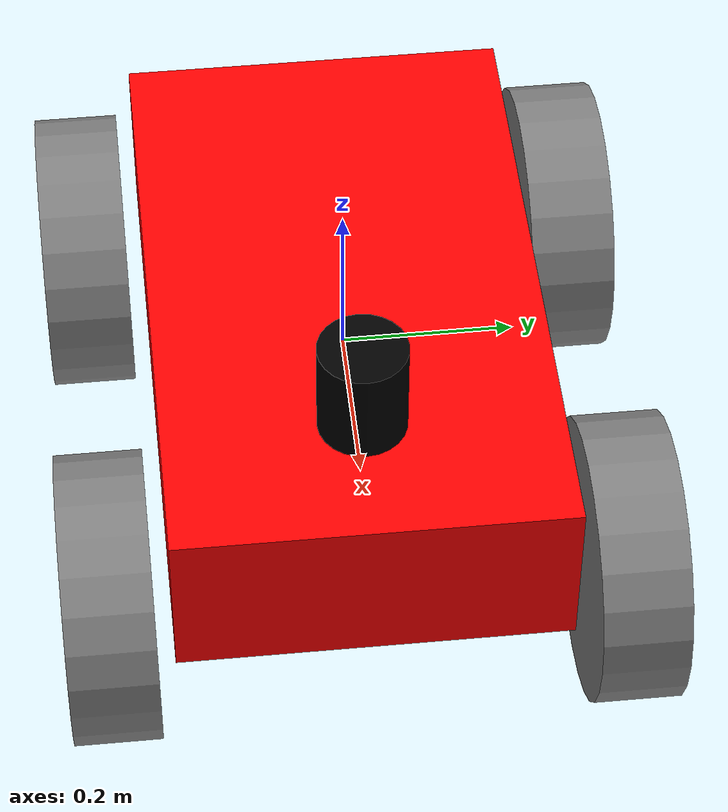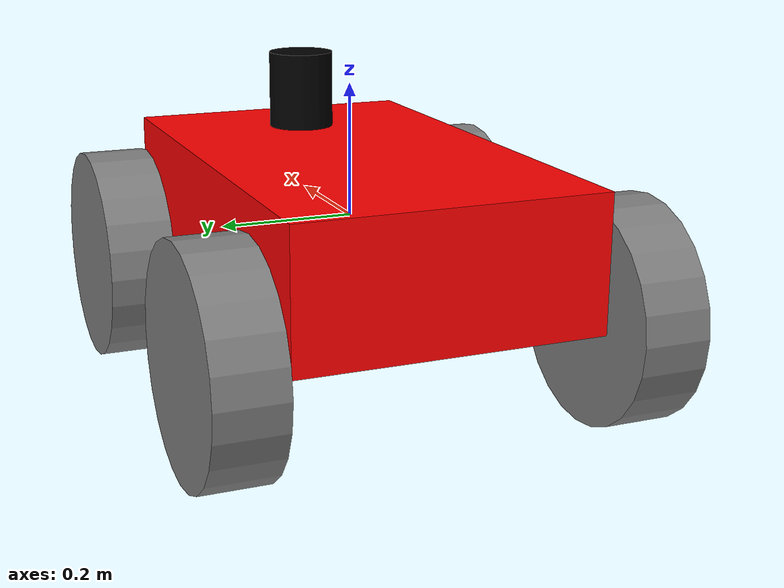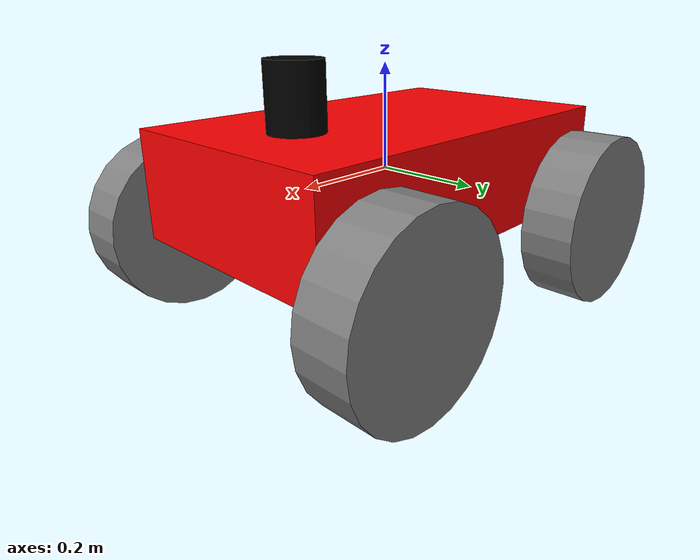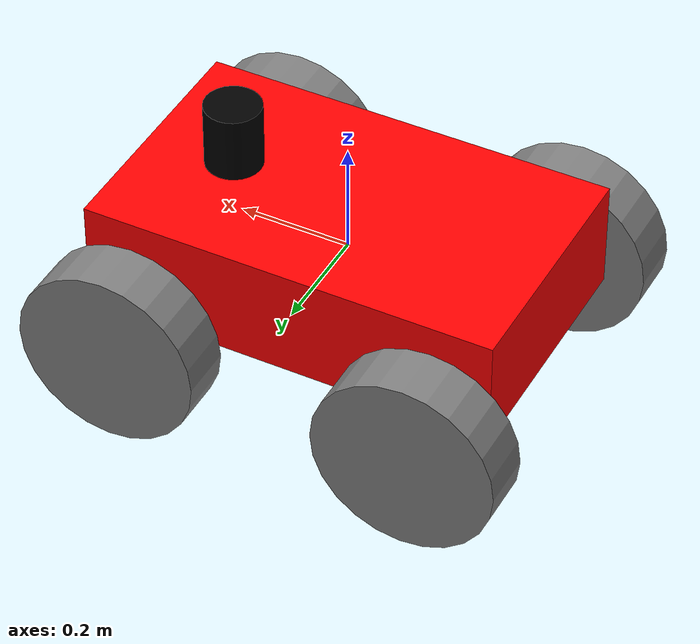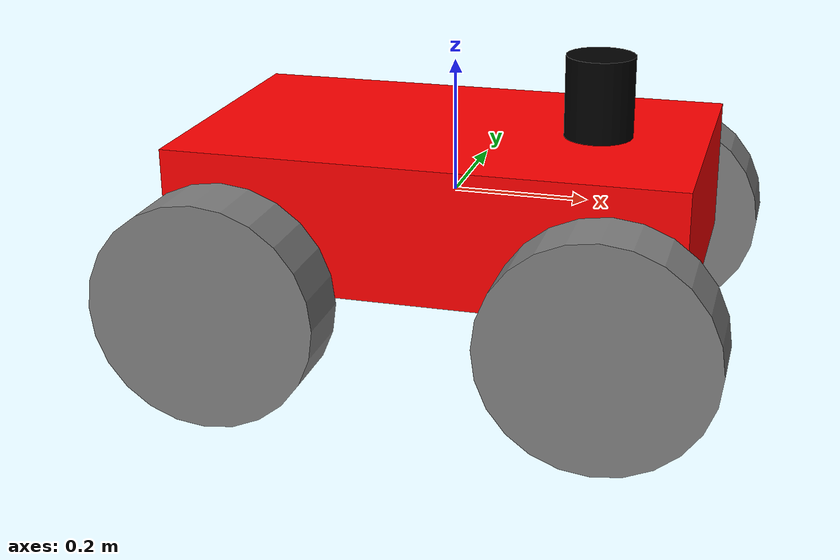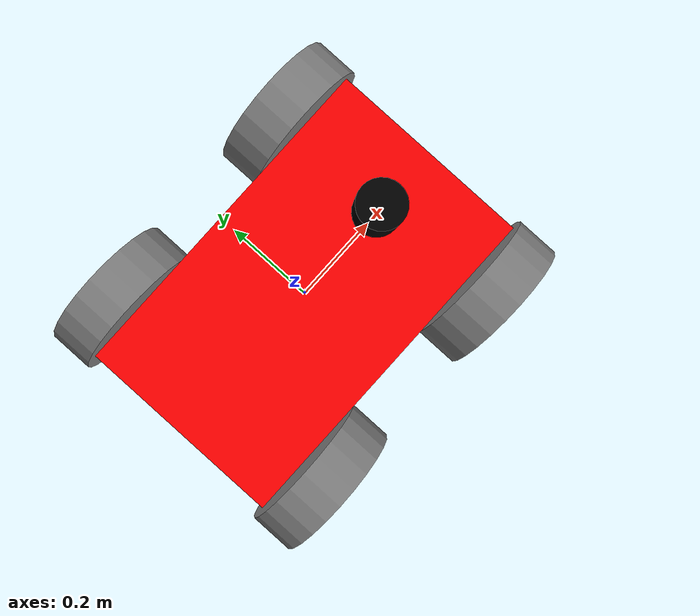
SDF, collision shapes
<?xml version='1.0'?>
<sdf version='1.5'> <!--- latest version is 1.9? -->
  <model name="bigfootbot">
    <!-- While we are creating the robot, we want Gazebo’s physics engine to ignore the robot
    so we set static to true -->
    <static>false</static>

    <!-- ****************** ROBOT BASE FOOTPRINT ***************************  -->
    <link name="base_footprint">
      <pose>0.0 0.0 0.0 0.0 0.0 0.0</pose>
    </link>

    <!-- ********************** ROBOT BASE *********************************  -->
    <link name="base_link">

      <inertial>
        <mass>20</mass>
        <inertia> <!-- inertias are tricky to compute -->
          <!-- http://gazebosim.org/tutorials?tut=inertia&cat=build_robot -->
          <ixx>0.083</ixx>       <!-- for a box: ixx = 0.083 * mass * (y*y + z*z) -->
          <ixy>0.0</ixy>         <!-- for a box: ixy = 0 -->
          <ixz>0.0</ixz>         <!-- for a box: ixz = 0 -->
          <iyy>0.083</iyy>       <!-- for a box: iyy = 0.083 * mass * (x*x + z*z) -->
          <iyz>0.0</iyz>         <!-- for a box: iyz = 0 -->
          <izz>0.083</izz>       <!-- for a box: izz = 0.083 * mass * (x*x + y*y) -->
        </inertia>
      </inertial>

      <collision name="base_collision">
        <pose>0 0 0 0 0 0</pose>
        <geometry>
          <box>
            <size>0.75 0.45 0.20</size>
          </box>
        </geometry>
      </collision>

      <visual name="base_visual">
        <pose>0.375 -0.225 -0.1 0 0 1.5708</pose>
        <geometry>
          <mesh>
            <uri>model://bigfootbot/meshes/frame_with_covers_2_m.stl</uri>
            <scale>1.0 1.0 1.0</scale>
          </mesh>
        </geometry>
        <material>
          <ambient>1.0 0.0 0.0 1.0</ambient> <!-- RGB [0..1] + alpha [0..1]-->
          <diffuse>1.0 0.0 0.0 1.0</diffuse>
          <specular>0.0 0.0 0.0 1.0</specular>
          <emissive>0.0 0.0 0.0 1.0</emissive>
        </material>
      </visual>

    </link>
    <!-- END OF ROBOT BASE -->

    <!-- ****************************** LIDAR *****************************    -->
    <link name="lidar_link">
      <inertial>
        <pose>0.215 0 0.13 0 0 0</pose>
        <inertia>
          <ixx>0.001</ixx>
          <ixy>0.000</ixy>
          <ixz>0.000</ixz>
          <iyy>0.001</iyy>
          <iyz>0.000</iyz>
          <izz>0.001</izz>
        </inertia>
        <mass>0.114</mass>
      </inertial>

      <collision name="lidar_collision">
        <pose>0.215 0 0.13 0 0 0</pose>
        <geometry>
          <cylinder>
            <radius>0.0508</radius>
            <length>0.18</length>
          </cylinder>
        </geometry>
      </collision>

      <visual name="lidar_visual">
        <pose>0.215 0 0.13 0 0 0</pose>
        <geometry>
          <cylinder>
            <radius>0.0508</radius>
            <length>0.18</length>
          </cylinder>
        </geometry>
        <material>
          <ambient>0.0 0.0 0.0 1.0</ambient>
          <diffuse>0.0 0.0 0.0 1.0</diffuse>
          <specular>0.0 0.0 0.0 1.0</specular>
          <emissive>0.0 0.0 0.0 1.0</emissive>
        </material>
      </visual>

      <sensor name="lidar" type="ray">
        <pose>0.215 0 0.215 0 0 0</pose>
        <always_on>true</always_on>
        <visualize>true</visualize>
        <update_rate>5</update_rate>
        <ray>
          <scan>
            <horizontal>
              <samples>120</samples>
              <resolution>1.00000</resolution>
              <min_angle>-3.14159</min_angle>
              <max_angle>3.14159</max_angle>
            </horizontal>
          </scan>
          <range>
            <min>0.300000</min>
            <max>15</max>
            <resolution>0.015000</resolution>
          </range>
          <noise>
            <type>gaussian</type>
            <mean>0.0</mean>
            <stddev>0.01</stddev>
          </noise>
        </ray>
        <plugin name="scan" filename="libgazebo_ros_ray_sensor.so">
          <ros>
            <!-- Set namespace -->

            <remapping>~/out:=scan</remapping>
          </ros>
          <output_type>sensor_msgs/LaserScan</output_type>
          <frame_name>lidar_link</frame_name>
        </plugin>
      </sensor>
    </link>
    <!-- END OF BLOCK 'Lidar' -->

    <!-- *********************** IMU SENSOR SETUP **************************  -->
    <link name="imu_link">
      <gravity>true</gravity>
      <sensor name="bmb_imu" type="imu">
        <always_on>true</always_on>
        <update_rate>100</update_rate>
        <visualize>true</visualize>
        <imu>
          <orientation>
            <x>
              <noise type="gaussian">
                <mean>0.0</mean>
                <stddev>2e-3</stddev>
              </noise>
            </x>
            <y>
              <noise type="gaussian">
                <mean>0.0</mean>
                <stddev>2e-3</stddev>
              </noise>
            </y>
            <z>
              <noise type="gaussian">
                <mean>0.0</mean>
                <stddev>2e-3</stddev>
              </noise>
            </z>
          </orientation>
          <angular_velocity>
            <x>
              <noise type="gaussian">
                <mean>0.0</mean>
                <stddev>2e-4</stddev>
              </noise>
            </x>
            <y>
              <noise type="gaussian">
                <mean>0.0</mean>
                <stddev>2e-4</stddev>
              </noise>
            </y>
            <z>
              <noise type="gaussian">
                <mean>0.0</mean>
                <stddev>2e-4</stddev>
              </noise>
            </z>
          </angular_velocity>
          <linear_acceleration>
            <x>
              <noise type="gaussian">
                <mean>0.0</mean>
                <stddev>1.7e-2</stddev>
              </noise>
            </x>
            <y>
              <noise type="gaussian">
                <mean>0.0</mean>
                <stddev>1.7e-2</stddev>
              </noise>
            </y>
            <z>
              <noise type="gaussian">
                <mean>0.0</mean>
                <stddev>1.7e-2</stddev>
              </noise>
            </z>
          </linear_acceleration>
        </imu>
        <plugin name="basic_mobile_bot_imu" filename="libgazebo_ros_imu_sensor.so">
          <initial_orientation_as_reference>false</initial_orientation_as_reference>
          <frame_name>imu_link</frame_name>
          <ros>
            <namespace>/imu</namespace>
            <remapping>~/out:=data</remapping>
          </ros>
        </plugin>
      </sensor>
    </link>

    <!-- *********************** GPS SETUP *********************************  -->

    <!-- *********************** DRIVE WHEELS ******************************  -->
    <!-- front left wheel-->
    <link name="drivewhl_fl_link">
      <pose>0.275 0.295 -0.1 0 0 0</pose>

      <collision name="drivewhl_fl_collision">
        <pose>0 0 0 1.5708 0 0</pose>
        <geometry>
          <cylinder>
            <radius>0.165</radius>
            <length>0.1</length>
          </cylinder>
        </geometry>
      </collision>

      <visual name="drivewhl_fl_visual">
        <pose>0 0 0 0 0 3.1416</pose>
        <geometry>
          <mesh>
            <uri>model://bigfootbot/meshes/wheel_m.stl</uri>
            <scale>1.0 1.0 1.0</scale>
          </mesh>
        </geometry>
        <material>
          <ambient>0.5 0.5 0.5 1.0</ambient> <!-- RGB [0..1] + alpha [0..1]-->
          <diffuse>0.5 0.5 0.5 1.0</diffuse>
          <specular>0.0 0.0 0.0 1.0</specular>
          <emissive>0.0 0.0 0.0 1.0</emissive>
        </material>
      </visual>

    </link>

    <!-- front right wheel-->
    <link name="drivewhl_fr_link">
      <pose>0.275 -0.295 -0.1 0 0 0</pose>

      <collision name="drivewhl_fr_collision">
        <pose>0 0 0 1.5708 0 0</pose>
        <geometry>
          <cylinder>
            <radius>0.165</radius>
            <length>0.1</length>
          </cylinder>
        </geometry>
      </collision>

      <visual name="drivewhl_fr_visual">
        <geometry>
          <mesh>
            <uri>model://bigfootbot/meshes/wheel_m.stl</uri>
            <scale>1.0 1.0 1.0</scale>
          </mesh>
        </geometry>
        <material>
          <ambient>0.5 0.5 0.5 1.0</ambient> <!-- RGB [0..1] + alpha [0..1]-->
          <diffuse>0.5 0.5 0.5 1.0</diffuse>
          <specular>0.0 0.0 0.0 1.0</specular>
          <emissive>0.0 0.0 0.0 1.0</emissive>
        </material>
      </visual>

    </link>

    <!-- rear left wheel-->
    <link name="drivewhl_rl_link">
      <pose>-0.275 0.295 -0.1 0 0 0</pose>

      <collision name="drivewhl_rl_collision">
        <pose>0 0 0 1.5708 0 0</pose>
        <geometry>
          <cylinder>
            <radius>0.165</radius>
            <length>0.1</length>
          </cylinder>
        </geometry>
      </collision>

      <visual name="drivewhl_rl_visual">
        <pose>0 0 0 0 0 3.1416</pose>
        <geometry>
          <mesh>
            <uri>model://bigfootbot/meshes/wheel_m.stl</uri>
            <scale>1.0 1.0 1.0</scale>
          </mesh>
        </geometry>
        <material>
          <ambient>0.5 0.5 0.5 1.0</ambient> <!-- RGB [0..1] + alpha [0..1]-->
          <diffuse>0.5 0.5 0.5 1.0</diffuse>
          <specular>0.0 0.0 0.0 1.0</specular>
          <emissive>0.0 0.0 0.0 1.0</emissive>
        </material>
      </visual>

    </link>

    <!-- rear right wheel-->
    <link name="drivewhl_rr_link">
      <pose>-0.275 -0.295 -0.1 0 0 0</pose>

      <collision name="drivewhl_rr_collision">
        <pose>0 0 0 1.5708 0 0</pose>
        <geometry>
          <cylinder>
            <radius>0.165</radius>
            <length>0.1</length>
          </cylinder>
        </geometry>
      </collision>

      <visual name="drivewhl_rr_visual">
        <geometry>
          <mesh>
            <uri>model://bigfootbot/meshes/wheel_m.stl</uri>
            <scale>1.0 1.0 1.0</scale>
          </mesh>
        </geometry>
        <material>
          <ambient>0.5 0.5 0.5 1.0</ambient> <!-- RGB [0..1] + alpha [0..1]-->
          <diffuse>0.5 0.5 0.5 1.0</diffuse>
          <specular>0.0 0.0 0.0 1.0</specular>
          <emissive>0.0 0.0 0.0 1.0</emissive>
        </material>
      </visual>

    </link>
    <!-- END OF DRIVE WHEELS -->

    <!-- ************************ JOINTS ***********************************  -->
    <!-- Pose of the joint is the same as the child link frame -->
    <!-- Axis is the axis of rotation relative to the child link frame -->

    <joint name="base_joint" type="fixed">
      <parent>base_footprint</parent>
      <child>base_link</child>
      <pose>0 0 0 0 0 0</pose>
    </joint>

    <joint name="drivewhl_fl_joint" type="revolute">
      <parent>base_link</parent>
      <child>drivewhl_fl_link</child>
      <pose>0 0 0 0 0 0</pose>
      <axis>
        <xyz>0 1 0</xyz>
      </axis>
    </joint>

    <joint name="drivewhl_fr_joint" type="revolute">
      <parent>base_link</parent>
      <child>drivewhl_fr_link</child>
      <pose>0 0 0 0 0 0</pose>
      <axis>
        <xyz>0 1 0</xyz>
      </axis>
    </joint>

    <joint name="drivewhl_rl_joint" type="revolute">
      <parent>base_link</parent>
      <child>drivewhl_rl_link</child>
      <pose>0 0 0 0 0 0</pose>
      <axis>
        <xyz>0 1 0</xyz>
      </axis>
    </joint>

    <joint name="drivewhl_rr_joint" type="revolute">
      <parent>base_link</parent>
      <child>drivewhl_rr_link</child>
      <pose>0 0 0 0 0 0</pose>
      <axis>
        <xyz>0 1 0</xyz>
      </axis>
    </joint>

    <joint name="lidar_joint" type="fixed">
      <parent>base_link</parent>
      <child>lidar_link</child>
      <pose>0 0 0 0 0 0</pose>
    </joint>

    <joint name="imu_joint" type="fixed">
      <parent>base_link</parent>
      <child>imu_link</child>
      <pose>0 0 0 0 0 0</pose>
    </joint>

    <!-- END OF JOINTS -->

    <!-- *********** DIFFERENTIAL DRIVE CONTROLLER + WHEEL ODOMETRY ***************************-->
    <plugin name="bigfootbot_skid_drive" filename="libgazebo_ros_diff_drive.so">

      <update_rate>30</update_rate>

      <!-- Number of wheel pairs -->
      <num_wheel_pairs>2</num_wheel_pairs>

      <!-- Front pair of wheels -->
      <left_joint>drivewhl_fl_joint</left_joint>
      <right_joint>drivewhl_fr_joint</right_joint>

      <!-- Rear pair of wheels -->
      <left_joint>drivewhl_rl_joint</left_joint>
      <right_joint>drivewhl_rr_joint</right_joint>

      <!-- Kinematics -->
      <wheel_separation>0.62</wheel_separation> <!-- front wheel pair-->
      <!-- rear wheel pair-->

      <wheel_diameter>0.33</wheel_diameter> <!-- front wheels -->
      <!-- rear wheels -->

      <!-- limits -->
      <max_wheel_torque>20</max_wheel_torque> <!-- Maximum torque which the wheels can produce, in Nm, defaults to 5 Nm -->
      <max_wheel_acceleration>1.0</max_wheel_acceleration>

      <!-- Receive velocity commands on this ROS topic -->
      <command_topic>cmd_vel</command_topic>

      <!-- Topic to publish nav_msgs/Odometry messages, defaults to `odom` -->
      <odometry_topic>odom</odometry_topic>

      <!-- Odometry frame, defaults to `odom` -->
      <odometry_frame>odom</odometry_frame>

      <!-- Robot frame to calculate odometry from, defaults to `base_footprint` -->
      <robot_base_frame>base_footprint</robot_base_frame>

      <!-- output -->
      <!-- When false, publish no wheel odometry data to a ROS topic -->
      <publish_odom>true</publish_odom>

      <!-- When true, publish coordinate transform from odom to base_footprint -->
      <!-- I usually use the robot_localization package to publish this transform -->
      <publish_odom_tf>false</publish_odom_tf>

      <!-- When true, publish coordinate transform from base_link to the wheels, defaults to false -->
      <!-- The robot_state_publisher package is often used to publish this transform -->
      <publish_wheel_tf>false</publish_wheel_tf>

      <!-- Odometry source, 0 for ENCODER, 1 for WORLD, defaults to WORLD -->
      <odometry_source>1</odometry_source>

      <!-- Change the ROS topic we will publish the odometry data to -->
      <ros>
          <remapping> odom:=wheel/odometry</remapping>
          <!-- we remap to /cmd_vel because the node teleop_twist_joy_node
                                                                  publishes to the topic /cmd_vel -->
          <!-- Set namespace -->

          <!-- Remap default topics -->
      </ros>
    </plugin>
    <!-- END OF DIFFERENTIAL DRIVE CONTROLLER + WHEEL ODOMETRY -->

    <plugin name="bigfootbot_joint_state" filename="libgazebo_ros_joint_state_publisher.so">
    <ros>
      <remapping>~/out:=joint_states</remapping>
    </ros>
    <update_rate>30</update_rate>
    <joint_name>drivewhl_fl_joint</joint_name>
    <joint_name>drivewhl_fr_joint</joint_name>
    <joint_name>drivewhl_rl_joint</joint_name>
    <joint_name>drivewhl_rr_joint</joint_name>
  </plugin>

  </model>
</sdf>
